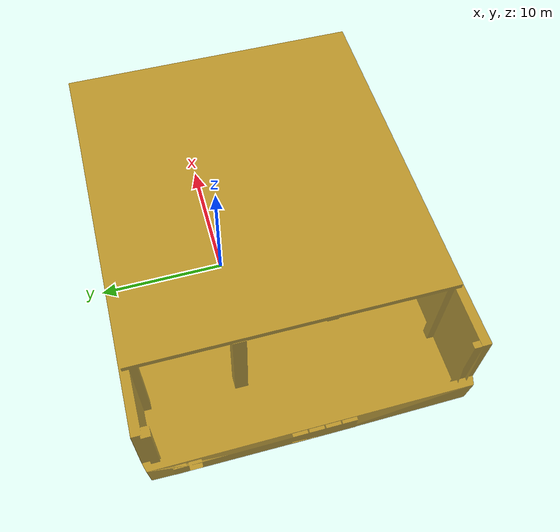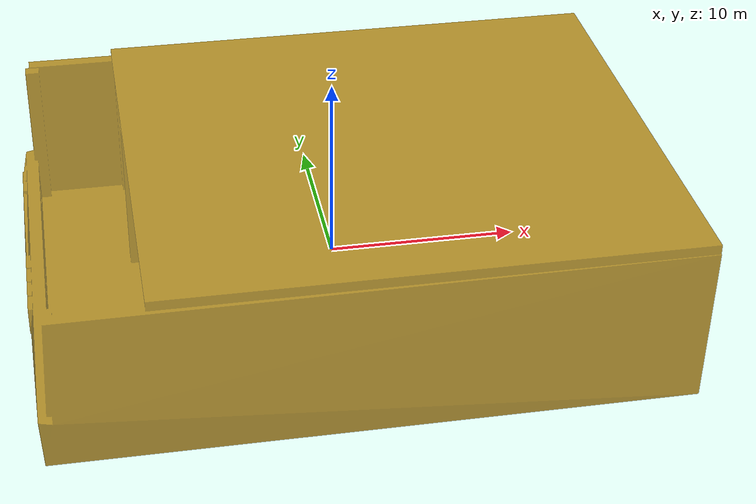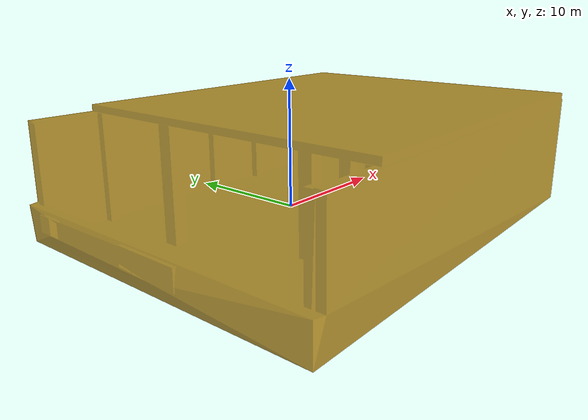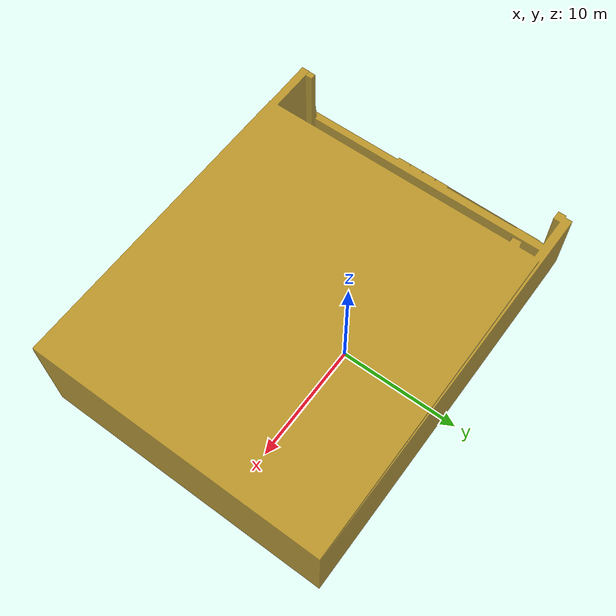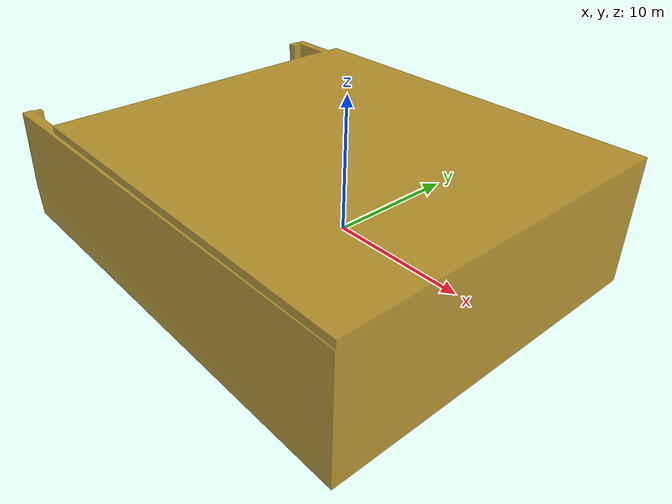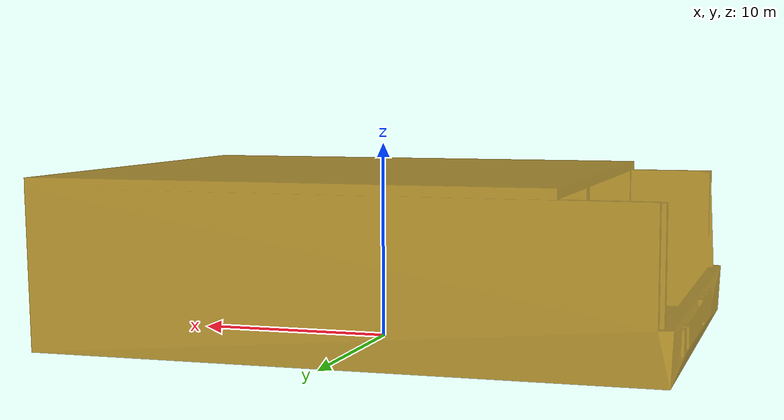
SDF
<?xml version="1.0" ?>
<sdf version="1.5">
  <model name="lab_131">
    <pose>0 0 0 0 0 0</pose>
      <static>true</static>
      <link name="lab">
        <collision name="collision">
          <geometry>
            <mesh>
              <uri>meshes/labpillars.obj</uri>
            </mesh>
          </geometry>
        </collision>
        <visual name="visual">
          <geometry>
            <mesh>
              <uri>meshes/labpillars.obj</uri>
            </mesh>
          </geometry>
          <material>
            <ambient>0.7 0.5 0 0.8</ambient>
            <diffuse>0.7 0.5 0 0.8</diffuse>
            <specular>1 1 1 0.8</specular>
          </material>
        </visual>
      </link>
    </model>
</sdf>
